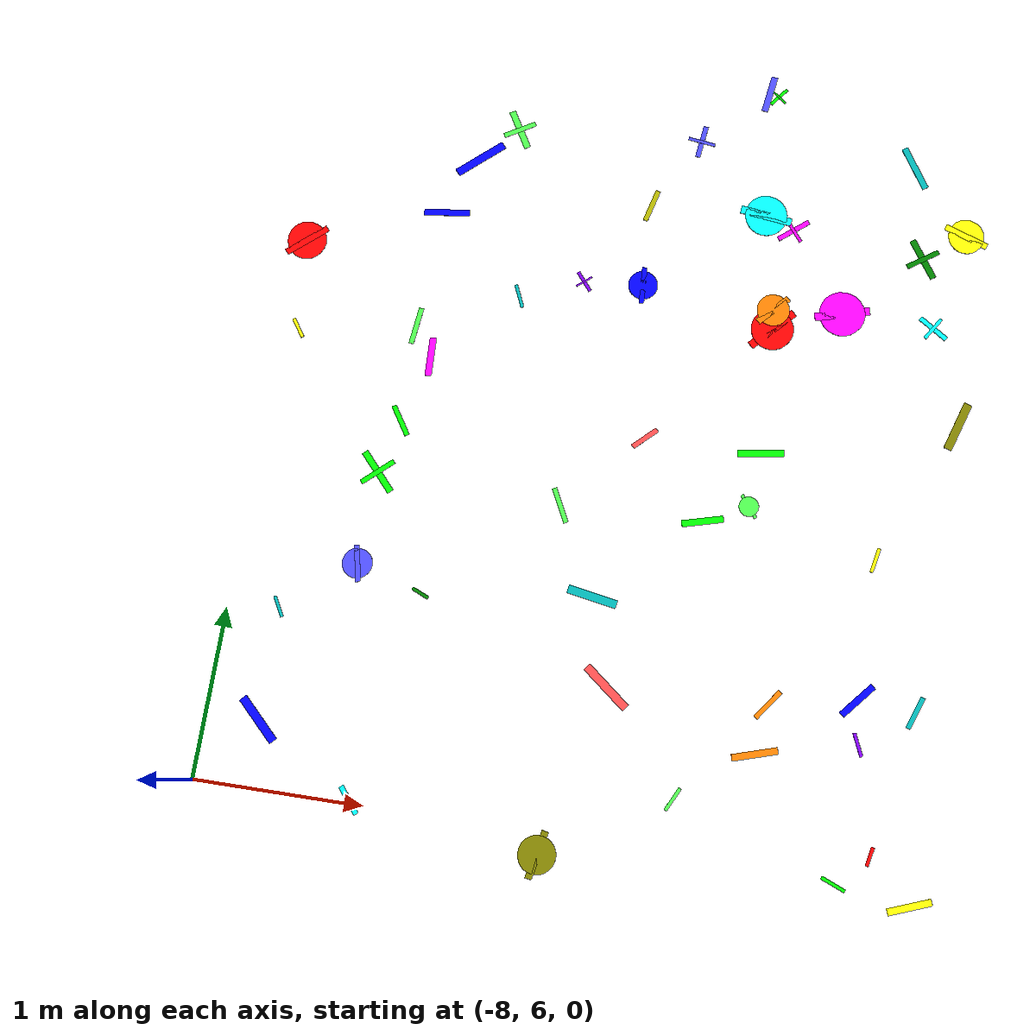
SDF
<sdf version="1.6">
 <world name="default">
  <model name="letter_P_611">
   <static>true</static>
   <pose>-7.69 6.39 0.010 0 0 5.503</pose>
   <link name="link">
    <visual name="visual">
     <geometry><box><size>0.31 0.05 0.002</size></box></geometry>
     <material>
      <ambient>0.0 0.0 1.0 1</ambient>
      <diffuse>0.0 0.0 1.0 1</diffuse>
      <specular>0.1 0.1 0.1 1</specular>
     </material>
    </visual>
   </link>
  </model>
  <model name="letter_K_613">
   <static>true</static>
   <pose>-7.70 7.05 0.011 0 0 5.222</pose>
   <link name="link">
    <visual name="visual">
     <geometry><box><size>0.13 0.02 0.002</size></box></geometry>
     <material>
      <ambient>0.0 0.7 0.7 1</ambient>
      <diffuse>0.0 0.7 0.7 1</diffuse>
      <specular>0.1 0.1 0.1 1</specular>
     </material>
    </visual>
   </link>
  </model>
  <model name="letter_W_617">
   <static>true</static>
   <pose>-7.91 8.74 0.005 0 0 2.168</pose>
   <link name="link">
    <visual name="visual">
     <geometry><box><size>0.13 0.02 0.002</size></box></geometry>
     <material>
      <ambient>1.0 1.0 0.0 1</ambient>
      <diffuse>1.0 1.0 0.0 1</diffuse>
      <specular>0.1 0.1 0.1 1</specular>
     </material>
    </visual>
   </link>
  </model>
  <model name="letter_O_618">
   <static>true</static>
   <pose>-7.96 9.30 0.013 0 0 3.846</pose>
   <link name="link">
    <visual name="visual">
     <geometry><box><size>0.29 0.04 0.002</size></box></geometry>
     <material>
      <ambient>1.0 0.0 0.0 1</ambient>
      <diffuse>1.0 0.0 0.0 1</diffuse>
      <specular>0.1 0.1 0.1 1</specular>
     </material>
    </visual>
    <visual name="visual2">
     <geometry><cylinder><radius>0.12</radius><length>0.002</length></cylinder></geometry>
     <material><ambient>1.0 0.0 0.0 1</ambient><diffuse>1.0 0.0 0.0 1</diffuse></material>
    </visual>
   </link>
  </model>
  <model name="letter_Y_688">
   <static>true</static>
   <pose>-7.09 6.02 0.012 0 0 2.248</pose>
   <link name="link">
    <visual name="visual">
     <geometry><box><size>0.18 0.03 0.002</size></box></geometry>
     <material>
      <ambient>0.0 1.0 1.0 1</ambient>
      <diffuse>0.0 1.0 1.0 1</diffuse>
      <specular>0.1 0.1 0.1 1</specular>
     </material>
    </visual>
   </link>
  </model>
  <model name="letter_G_690">
   <static>true</static>
   <pose>-7.29 7.37 0.007 0 0 1.784</pose>
   <link name="link">
    <visual name="visual">
     <geometry><box><size>0.22 0.03 0.002</size></box></geometry>
     <material>
      <ambient>0.3 0.3 1.0 1</ambient>
      <diffuse>0.3 0.3 1.0 1</diffuse>
      <specular>0.1 0.1 0.1 1</specular>
     </material>
    </visual>
    <visual name="visual2">
     <geometry><cylinder><radius>0.09</radius><length>0.002</length></cylinder></geometry>
     <material><ambient>0.3 0.3 1.0 1</ambient><diffuse>0.3 0.3 1.0 1</diffuse></material>
    </visual>
   </link>
  </model>
  <model name="letter_X_691">
   <static>true</static>
   <pose>-6.89 7.25 0.012 0 0 5.875</pose>
   <link name="link">
    <visual name="visual">
     <geometry><box><size>0.11 0.02 0.002</size></box></geometry>
     <material>
      <ambient>0.0 0.5 0.0 1</ambient>
      <diffuse>0.0 0.5 0.0 1</diffuse>
      <specular>0.1 0.1 0.1 1</specular>
     </material>
    </visual>
   </link>
  </model>
  <model name="letter_R_692">
   <static>true</static>
   <pose>-7.19 8.26 0.010 0 0 2.147</pose>
   <link name="link">
    <visual name="visual">
     <geometry><box><size>0.20 0.03 0.002</size></box></geometry>
     <material>
      <ambient>0.0 1.0 0.0 1</ambient>
      <diffuse>0.0 1.0 0.0 1</diffuse>
      <specular>0.1 0.1 0.1 1</specular>
     </material>
    </visual>
   </link>
  </model>
  <model name="letter_F_693">
   <static>true</static>
   <pose>-7.27 7.93 0.005 0 0 2.302</pose>
   <link name="link">
    <visual name="visual">
     <geometry><box><size>0.29 0.04 0.002</size></box></geometry>
     <material>
      <ambient>0.0 1.0 0.0 1</ambient>
      <diffuse>0.0 1.0 0.0 1</diffuse>
      <specular>0.1 0.1 0.1 1</specular>
     </material>
    </visual>
    <visual name="visual2">
     <pose>0 0 0.001 0 0 1.57</pose>
     <geometry><box><size>0.23 0.03 0.001</size></box></geometry>
     <material><ambient>0.0 1.0 0.0 1</ambient><diffuse>0.0 1.0 0.0 1</diffuse></material>
    </visual>
   </link>
  </model>
  <model name="letter_R_694">
   <static>true</static>
   <pose>-7.08 8.68 0.008 0 0 4.748</pose>
   <link name="link">
    <visual name="visual">
     <geometry><box><size>0.24 0.04 0.002</size></box></geometry>
     <material>
      <ambient>1.0 0.0 1.0 1</ambient>
      <diffuse>1.0 0.0 1.0 1</diffuse>
      <specular>0.1 0.1 0.1 1</specular>
     </material>
    </visual>
   </link>
  </model>
  <model name="letter_N_695">
   <static>true</static>
   <pose>-6.61 9.14 0.009 0 0 1.992</pose>
   <link name="link">
    <visual name="visual">
     <geometry><box><size>0.15 0.02 0.002</size></box></geometry>
     <material>
      <ambient>0.0 0.7 0.7 1</ambient>
      <diffuse>0.0 0.7 0.7 1</diffuse>
      <specular>0.1 0.1 0.1 1</specular>
     </material>
    </visual>
   </link>
  </model>
  <model name="letter_B_696">
   <static>true</static>
   <pose>-7.20 8.86 0.006 0 0 1.464</pose>
   <link name="link">
    <visual name="visual">
     <geometry><box><size>0.23 0.03 0.002</size></box></geometry>
     <material>
      <ambient>0.3 1.0 0.3 1</ambient>
      <diffuse>0.3 1.0 0.3 1</diffuse>
      <specular>0.1 0.1 0.1 1</specular>
     </material>
    </visual>
   </link>
  </model>
  <model name="letter_T_697">
   <static>true</static>
   <pose>-6.78 10.22 0.005 0 0 5.243</pose>
   <link name="link">
    <visual name="visual">
     <geometry><box><size>0.26 0.04 0.002</size></box></geometry>
     <material>
      <ambient>0.3 1.0 0.3 1</ambient>
      <diffuse>0.3 1.0 0.3 1</diffuse>
      <specular>0.1 0.1 0.1 1</specular>
     </material>
    </visual>
    <visual name="visual2">
     <pose>0 0 0.001 0 0 1.57</pose>
     <geometry><box><size>0.21 0.03 0.001</size></box></geometry>
     <material><ambient>0.3 1.0 0.3 1</ambient><diffuse>0.3 1.0 0.3 1</diffuse></material>
    </visual>
   </link>
  </model>
  <model name="letter_P_698">
   <static>true</static>
   <pose>-6.99 9.99 0.008 0 0 0.719</pose>
   <link name="link">
    <visual name="visual">
     <geometry><box><size>0.34 0.05 0.002</size></box></geometry>
     <material>
      <ambient>0.0 0.0 1.0 1</ambient>
      <diffuse>0.0 0.0 1.0 1</diffuse>
      <specular>0.1 0.1 0.1 1</specular>
     </material>
    </visual>
   </link>
  </model>
  <model name="letter_P_699">
   <static>true</static>
   <pose>-7.14 9.61 0.003 0 0 0.115</pose>
   <link name="link">
    <visual name="visual">
     <geometry><box><size>0.28 0.04 0.002</size></box></geometry>
     <material>
      <ambient>0.0 0.0 1.0 1</ambient>
      <diffuse>0.0 0.0 1.0 1</diffuse>
      <specular>0.1 0.1 0.1 1</specular>
     </material>
    </visual>
   </link>
  </model>
  <model name="letter_G_765">
   <static>true</static>
   <pose>-5.98 5.88 0.004 0 0 1.370</pose>
   <link name="link">
    <visual name="visual">
     <geometry><box><size>0.28 0.04 0.002</size></box></geometry>
     <material>
      <ambient>0.5 0.5 0.0 1</ambient>
      <diffuse>0.5 0.5 0.0 1</diffuse>
      <specular>0.1 0.1 0.1 1</specular>
     </material>
    </visual>
    <visual name="visual2">
     <geometry><cylinder><radius>0.11</radius><length>0.002</length></cylinder></geometry>
     <material><ambient>0.5 0.5 0.0 1</ambient><diffuse>0.5 0.5 0.0 1</diffuse></material>
    </visual>
   </link>
  </model>
  <model name="letter_P_767">
   <static>true</static>
   <pose>-5.89 7.38 0.005 0 0 6.110</pose>
   <link name="link">
    <visual name="visual">
     <geometry><box><size>0.30 0.05 0.002</size></box></geometry>
     <material>
      <ambient>0.0 0.7 0.7 1</ambient>
      <diffuse>0.0 0.7 0.7 1</diffuse>
      <specular>0.1 0.1 0.1 1</specular>
     </material>
    </visual>
   </link>
  </model>
  <model name="letter_S_768">
   <static>true</static>
   <pose>-5.73 6.87 0.007 0 0 5.615</pose>
   <link name="link">
    <visual name="visual">
     <geometry><box><size>0.33 0.05 0.002</size></box></geometry>
     <material>
      <ambient>1.0 0.3 0.3 1</ambient>
      <diffuse>1.0 0.3 0.3 1</diffuse>
      <specular>0.1 0.1 0.1 1</specular>
     </material>
    </visual>
   </link>
  </model>
  <model name="letter_D_769">
   <static>true</static>
   <pose>-5.72 8.37 0.008 0 0 3.900</pose>
   <link name="link">
    <visual name="visual">
     <geometry><box><size>0.18 0.03 0.002</size></box></geometry>
     <material>
      <ambient>1.0 0.3 0.3 1</ambient>
      <diffuse>1.0 0.3 0.3 1</diffuse>
      <specular>0.1 0.1 0.1 1</specular>
     </material>
    </visual>
   </link>
  </model>
  <model name="letter_B_770">
   <static>true</static>
   <pose>-6.16 7.89 0.011 0 0 2.042</pose>
   <link name="link">
    <visual name="visual">
     <geometry><box><size>0.22 0.03 0.002</size></box></geometry>
     <material>
      <ambient>0.3 1.0 0.3 1</ambient>
      <diffuse>0.3 1.0 0.3 1</diffuse>
      <specular>0.1 0.1 0.1 1</specular>
     </material>
    </visual>
   </link>
  </model>
  <model name="letter_E_771">
   <static>true</static>
   <pose>-6.23 9.29 0.010 0 0 2.259</pose>
   <link name="link">
    <visual name="visual">
     <geometry><box><size>0.14 0.02 0.002</size></box></geometry>
     <material>
      <ambient>0.5 0.0 1.0 1</ambient>
      <diffuse>0.5 0.0 1.0 1</diffuse>
      <specular>0.1 0.1 0.1 1</specular>
     </material>
    </visual>
    <visual name="visual2">
     <pose>0 0 0.001 0 0 1.57</pose>
     <geometry><box><size>0.11 0.01 0.001</size></box></geometry>
     <material><ambient>0.5 0.0 1.0 1</ambient><diffuse>0.5 0.0 1.0 1</diffuse></material>
    </visual>
   </link>
  </model>
  <model name="letter_O_772">
   <static>true</static>
   <pose>-5.87 9.32 0.012 0 0 4.763</pose>
   <link name="link">
    <visual name="visual">
     <geometry><box><size>0.23 0.03 0.002</size></box></geometry>
     <material>
      <ambient>0.0 0.0 1.0 1</ambient>
      <diffuse>0.0 0.0 1.0 1</diffuse>
      <specular>0.1 0.1 0.1 1</specular>
     </material>
    </visual>
    <visual name="visual2">
     <geometry><cylinder><radius>0.09</radius><length>0.002</length></cylinder></geometry>
     <material><ambient>0.0 0.0 1.0 1</ambient><diffuse>0.0 0.0 1.0 1</diffuse></material>
    </visual>
   </link>
  </model>
  <model name="letter_J_773">
   <static>true</static>
   <pose>-5.89 9.84 0.011 0 0 4.458</pose>
   <link name="link">
    <visual name="visual">
     <geometry><box><size>0.21 0.03 0.002</size></box></geometry>
     <material>
      <ambient>0.7 0.7 0.0 1</ambient>
      <diffuse>0.7 0.7 0.0 1</diffuse>
      <specular>0.1 0.1 0.1 1</specular>
     </material>
    </visual>
   </link>
  </model>
  <model name="letter_F_774">
   <static>true</static>
   <pose>-5.64 10.31 0.003 0 0 4.586</pose>
   <link name="link">
    <visual name="visual">
     <geometry><box><size>0.21 0.03 0.002</size></box></geometry>
     <material>
      <ambient>0.3 0.3 1.0 1</ambient>
      <diffuse>0.3 0.3 1.0 1</diffuse>
      <specular>0.1 0.1 0.1 1</specular>
     </material>
    </visual>
    <visual name="visual2">
     <pose>0 0 0.001 0 0 1.57</pose>
     <geometry><box><size>0.17 0.02 0.001</size></box></geometry>
     <material><ambient>0.3 0.3 1.0 1</ambient><diffuse>0.3 0.3 1.0 1</diffuse></material>
    </visual>
   </link>
  </model>
  <model name="letter_Y_838">
   <static>true</static>
   <pose>-5.26 6.30 0.007 0 0 1.109</pose>
   <link name="link">
    <visual name="visual">
     <geometry><box><size>0.15 0.02 0.002</size></box></geometry>
     <material>
      <ambient>0.3 1.0 0.3 1</ambient>
      <diffuse>0.3 1.0 0.3 1</diffuse>
      <specular>0.1 0.1 0.1 1</specular>
     </material>
    </visual>
   </link>
  </model>
  <model name="letter_V_840">
   <static>true</static>
   <pose>-4.79 6.91 0.010 0 0 4.068</pose>
   <link name="link">
    <visual name="visual">
     <geometry><box><size>0.21 0.03 0.002</size></box></geometry>
     <material>
      <ambient>1.0 0.5 0.0 1</ambient>
      <diffuse>1.0 0.5 0.0 1</diffuse>
      <specular>0.1 0.1 0.1 1</specular>
     </material>
    </visual>
   </link>
  </model>
  <model name="letter_J_841">
   <static>true</static>
   <pose>-4.83 6.62 0.011 0 0 0.296</pose>
   <link name="link">
    <visual name="visual">
     <geometry><box><size>0.27 0.04 0.002</size></box></geometry>
     <material>
      <ambient>1.0 0.5 0.0 1</ambient>
      <diffuse>1.0 0.5 0.0 1</diffuse>
      <specular>0.1 0.1 0.1 1</specular>
     </material>
    </visual>
   </link>
  </model>
  <model name="letter_K_842">
   <static>true</static>
   <pose>-5.31 7.92 0.010 0 0 0.261</pose>
   <link name="link">
    <visual name="visual">
     <geometry><box><size>0.25 0.04 0.002</size></box></geometry>
     <material>
      <ambient>0.0 1.0 0.0 1</ambient>
      <diffuse>0.0 1.0 0.0 1</diffuse>
      <specular>0.1 0.1 0.1 1</specular>
     </material>
    </visual>
   </link>
  </model>
  <model name="letter_O_843">
   <static>true</static>
   <pose>-5.05 8.05 0.004 0 0 2.233</pose>
   <link name="link">
    <visual name="visual">
     <geometry><box><size>0.16 0.02 0.002</size></box></geometry>
     <material>
      <ambient>0.3 1.0 0.3 1</ambient>
      <diffuse>0.3 1.0 0.3 1</diffuse>
      <specular>0.1 0.1 0.1 1</specular>
     </material>
    </visual>
    <visual name="visual2">
     <geometry><cylinder><radius>0.06</radius><length>0.002</length></cylinder></geometry>
     <material><ambient>0.3 1.0 0.3 1</ambient><diffuse>0.3 1.0 0.3 1</diffuse></material>
    </visual>
   </link>
  </model>
  <model name="letter_W_844">
   <static>true</static>
   <pose>-5.02 8.38 0.006 0 0 0.149</pose>
   <link name="link">
    <visual name="visual">
     <geometry><box><size>0.28 0.04 0.002</size></box></geometry>
     <material>
      <ambient>0.0 1.0 0.0 1</ambient>
      <diffuse>0.0 1.0 0.0 1</diffuse>
      <specular>0.1 0.1 0.1 1</specular>
     </material>
    </visual>
   </link>
  </model>
  <model name="letter_C_845">
   <static>true</static>
   <pose>-5.06 9.28 0.013 0 0 3.937</pose>
   <link name="link">
    <visual name="visual">
     <geometry><box><size>0.24 0.04 0.002</size></box></geometry>
     <material>
      <ambient>1.0 0.5 0.0 1</ambient>
      <diffuse>1.0 0.5 0.0 1</diffuse>
      <specular>0.1 0.1 0.1 1</specular>
     </material>
    </visual>
    <visual name="visual2">
     <geometry><cylinder><radius>0.10</radius><length>0.002</length></cylinder></geometry>
     <material><ambient>1.0 0.5 0.0 1</ambient><diffuse>1.0 0.5 0.0 1</diffuse></material>
    </visual>
   </link>
  </model>
  <model name="letter_G_846">
   <static>true</static>
   <pose>-4.64 9.32 0.005 0 0 0.253</pose>
   <link name="link">
    <visual name="visual">
     <geometry><box><size>0.34 0.05 0.002</size></box></geometry>
     <material>
      <ambient>1.0 0.0 1.0 1</ambient>
      <diffuse>1.0 0.0 1.0 1</diffuse>
      <specular>0.1 0.1 0.1 1</specular>
     </material>
    </visual>
    <visual name="visual2">
     <geometry><cylinder><radius>0.14</radius><length>0.002</length></cylinder></geometry>
     <material><ambient>1.0 0.0 1.0 1</ambient><diffuse>1.0 0.0 1.0 1</diffuse></material>
    </visual>
   </link>
  </model>
  <model name="letter_Q_847">
   <static>true</static>
   <pose>-5.05 9.16 0.006 0 0 3.943</pose>
   <link name="link">
    <visual name="visual">
     <geometry><box><size>0.34 0.05 0.002</size></box></geometry>
     <material>
      <ambient>1.0 0.0 0.0 1</ambient>
      <diffuse>1.0 0.0 0.0 1</diffuse>
      <specular>0.1 0.1 0.1 1</specular>
     </material>
    </visual>
    <visual name="visual2">
     <geometry><cylinder><radius>0.13</radius><length>0.002</length></cylinder></geometry>
     <material><ambient>1.0 0.0 0.0 1</ambient><diffuse>1.0 0.0 0.0 1</diffuse></material>
    </visual>
   </link>
  </model>
  <model name="letter_Q_848">
   <static>true</static>
   <pose>-5.18 9.88 0.011 0 0 3.016</pose>
   <link name="link">
    <visual name="visual">
     <geometry><box><size>0.32 0.05 0.002</size></box></geometry>
     <material>
      <ambient>0.0 1.0 1.0 1</ambient>
      <diffuse>0.0 1.0 1.0 1</diffuse>
      <specular>0.1 0.1 0.1 1</specular>
     </material>
    </visual>
    <visual name="visual2">
     <geometry><cylinder><radius>0.13</radius><length>0.002</length></cylinder></geometry>
     <material><ambient>0.0 1.0 1.0 1</ambient><diffuse>0.0 1.0 1.0 1</diffuse></material>
    </visual>
   </link>
  </model>
  <model name="letter_A_849">
   <static>true</static>
   <pose>-5.00 9.81 0.008 0 0 3.810</pose>
   <link name="link">
    <visual name="visual">
     <geometry><box><size>0.22 0.03 0.002</size></box></geometry>
     <material>
      <ambient>1.0 0.0 1.0 1</ambient>
      <diffuse>1.0 0.0 1.0 1</diffuse>
      <specular>0.1 0.1 0.1 1</specular>
     </material>
    </visual>
    <visual name="visual2">
     <pose>0 0 0.001 0 0 1.57</pose>
     <geometry><box><size>0.17 0.02 0.001</size></box></geometry>
     <material><ambient>1.0 0.0 1.0 1</ambient><diffuse>1.0 0.0 1.0 1</diffuse></material>
    </visual>
   </link>
  </model>
  <model name="letter_L_851">
   <static>true</static>
   <pose>-5.20 10.68 0.005 0 0 0.892</pose>
   <link name="link">
    <visual name="visual">
     <geometry><box><size>0.14 0.02 0.002</size></box></geometry>
     <material>
      <ambient>0.0 1.0 0.0 1</ambient>
      <diffuse>0.0 1.0 0.0 1</diffuse>
      <specular>0.1 0.1 0.1 1</specular>
     </material>
    </visual>
    <visual name="visual2">
     <pose>0 0 0.001 0 0 1.57</pose>
     <geometry><box><size>0.12 0.01 0.001</size></box></geometry>
     <material><ambient>0.0 1.0 0.0 1</ambient><diffuse>0.0 1.0 0.0 1</diffuse></material>
    </visual>
   </link>
  </model>
  <model name="letter_S_852">
   <static>true</static>
   <pose>-5.26 10.69 0.006 0 0 1.427</pose>
   <link name="link">
    <visual name="visual">
     <geometry><box><size>0.24 0.04 0.002</size></box></geometry>
     <material>
      <ambient>0.3 0.3 1.0 1</ambient>
      <diffuse>0.3 0.3 1.0 1</diffuse>
      <specular>0.1 0.1 0.1 1</specular>
     </material>
    </visual>
   </link>
  </model>
  <model name="letter_Y_915">
   <static>true</static>
   <pose>-4.11 6.15 0.004 0 0 1.351</pose>
   <link name="link">
    <visual name="visual">
     <geometry><box><size>0.11 0.02 0.002</size></box></geometry>
     <material>
      <ambient>1.0 0.0 0.0 1</ambient>
      <diffuse>1.0 0.0 0.0 1</diffuse>
      <specular>0.1 0.1 0.1 1</specular>
     </material>
    </visual>
   </link>
  </model>
  <model name="letter_P_916">
   <static>true</static>
   <pose>-3.86 5.91 0.010 0 0 3.499</pose>
   <link name="link">
    <visual name="visual">
     <geometry><box><size>0.26 0.04 0.002</size></box></geometry>
     <material>
      <ambient>1.0 1.0 0.0 1</ambient>
      <diffuse>1.0 1.0 0.0 1</diffuse>
      <specular>0.1 0.1 0.1 1</specular>
     </material>
    </visual>
   </link>
  </model>
  <model name="letter_Z_917">
   <static>true</static>
   <pose>-4.30 5.97 0.013 0 0 5.905</pose>
   <link name="link">
    <visual name="visual">
     <geometry><box><size>0.15 0.02 0.002</size></box></geometry>
     <material>
      <ambient>0.0 1.0 0.0 1</ambient>
      <diffuse>0.0 1.0 0.0 1</diffuse>
      <specular>0.1 0.1 0.1 1</specular>
     </material>
    </visual>
   </link>
  </model>
  <model name="letter_R_918">
   <static>true</static>
   <pose>-4.28 7.01 0.006 0 0 4.000</pose>
   <link name="link">
    <visual name="visual">
     <geometry><box><size>0.25 0.04 0.002</size></box></geometry>
     <material>
      <ambient>0.0 0.0 1.0 1</ambient>
      <diffuse>0.0 0.0 1.0 1</diffuse>
      <specular>0.1 0.1 0.1 1</specular>
     </material>
    </visual>
   </link>
  </model>
  <model name="letter_R_919">
   <static>true</static>
   <pose>-3.94 6.99 0.010 0 0 4.359</pose>
   <link name="link">
    <visual name="visual">
     <geometry><box><size>0.20 0.03 0.002</size></box></geometry>
     <material>
      <ambient>0.0 0.7 0.7 1</ambient>
      <diffuse>0.0 0.7 0.7 1</diffuse>
      <specular>0.1 0.1 0.1 1</specular>
     </material>
    </visual>
   </link>
  </model>
  <model name="letter_M_920">
   <static>true</static>
   <pose>-4.25 6.76 0.011 0 0 1.981</pose>
   <link name="link">
    <visual name="visual">
     <geometry><box><size>0.14 0.02 0.002</size></box></geometry>
     <material>
      <ambient>0.5 0.0 1.0 1</ambient>
      <diffuse>0.5 0.0 1.0 1</diffuse>
      <specular>0.1 0.1 0.1 1</specular>
     </material>
    </visual>
   </link>
  </model>
  <model name="letter_P_921">
   <static>true</static>
   <pose>-4.27 7.84 0.009 0 0 1.361</pose>
   <link name="link">
    <visual name="visual">
     <geometry><box><size>0.15 0.02 0.002</size></box></geometry>
     <material>
      <ambient>1.0 1.0 0.0 1</ambient>
      <diffuse>1.0 1.0 0.0 1</diffuse>
      <specular>0.1 0.1 0.1 1</specular>
     </material>
    </visual>
   </link>
  </model>
  <model name="letter_T_923">
   <static>true</static>
   <pose>-4.08 9.31 0.006 0 0 2.566</pose>
   <link name="link">
    <visual name="visual">
     <geometry><box><size>0.20 0.03 0.002</size></box></geometry>
     <material>
      <ambient>0.0 1.0 1.0 1</ambient>
      <diffuse>0.0 1.0 1.0 1</diffuse>
      <specular>0.1 0.1 0.1 1</specular>
     </material>
    </visual>
    <visual name="visual2">
     <pose>0 0 0.001 0 0 1.57</pose>
     <geometry><box><size>0.16 0.02 0.001</size></box></geometry>
     <material><ambient>0.0 1.0 1.0 1</ambient><diffuse>0.0 1.0 1.0 1</diffuse></material>
    </visual>
   </link>
  </model>
  <model name="letter_S_924">
   <static>true</static>
   <pose>-3.87 8.72 0.008 0 0 1.259</pose>
   <link name="link">
    <visual name="visual">
     <geometry><box><size>0.31 0.05 0.002</size></box></geometry>
     <material>
      <ambient>0.5 0.5 0.0 1</ambient>
      <diffuse>0.5 0.5 0.0 1</diffuse>
      <specular>0.1 0.1 0.1 1</specular>
     </material>
    </visual>
   </link>
  </model>
  <model name="letter_Z_925">
   <static>true</static>
   <pose>-4.30 10.33 0.005 0 0 2.139</pose>
   <link name="link">
    <visual name="visual">
     <geometry><box><size>0.29 0.04 0.002</size></box></geometry>
     <material>
      <ambient>0.0 0.7 0.7 1</ambient>
      <diffuse>0.0 0.7 0.7 1</diffuse>
      <specular>0.1 0.1 0.1 1</specular>
     </material>
    </visual>
   </link>
  </model>
  <model name="letter_Q_926">
   <static>true</static>
   <pose>-3.94 9.93 0.003 0 0 2.802</pose>
   <link name="link">
    <visual name="visual">
     <geometry><box><size>0.28 0.04 0.002</size></box></geometry>
     <material>
      <ambient>1.0 1.0 0.0 1</ambient>
      <diffuse>1.0 1.0 0.0 1</diffuse>
      <specular>0.1 0.1 0.1 1</specular>
     </material>
    </visual>
    <visual name="visual2">
     <geometry><cylinder><radius>0.11</radius><length>0.002</length></cylinder></geometry>
     <material><ambient>1.0 1.0 0.0 1</ambient><diffuse>1.0 1.0 0.0 1</diffuse></material>
    </visual>
   </link>
  </model>
  <model name="letter_I_927">
   <static>true</static>
   <pose>-4.19 9.74 0.012 0 0 2.165</pose>
   <link name="link">
    <visual name="visual">
     <geometry><box><size>0.27 0.04 0.002</size></box></geometry>
     <material>
      <ambient>0.0 0.5 0.0 1</ambient>
      <diffuse>0.0 0.5 0.0 1</diffuse>
      <specular>0.1 0.1 0.1 1</specular>
     </material>
    </visual>
    <visual name="visual2">
     <pose>0 0 0.001 0 0 1.57</pose>
     <geometry><box><size>0.22 0.03 0.001</size></box></geometry>
     <material><ambient>0.0 0.5 0.0 1</ambient><diffuse>0.0 0.5 0.0 1</diffuse></material>
    </visual>
   </link>
  </model>
 </world>
</sdf>
